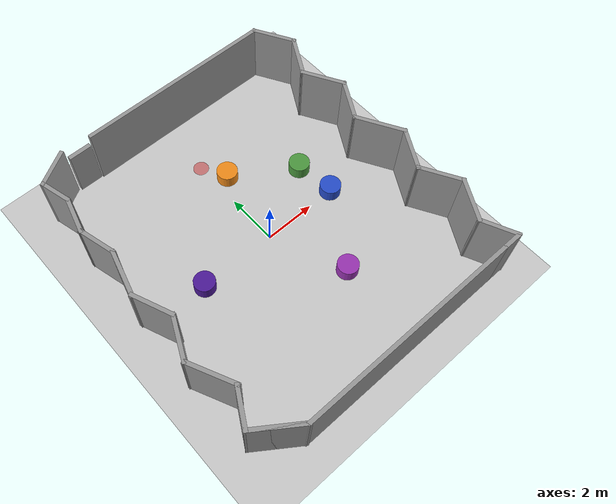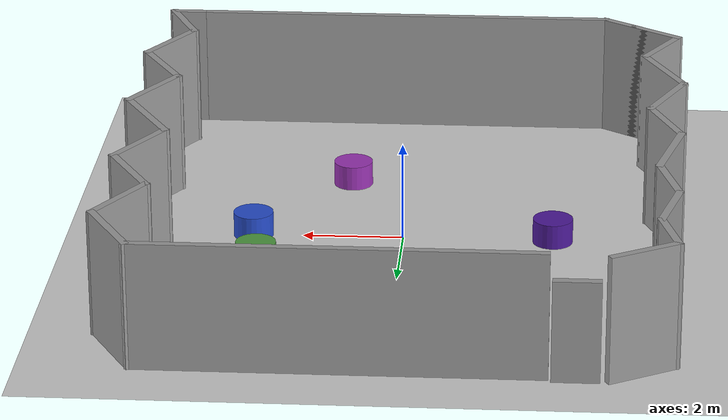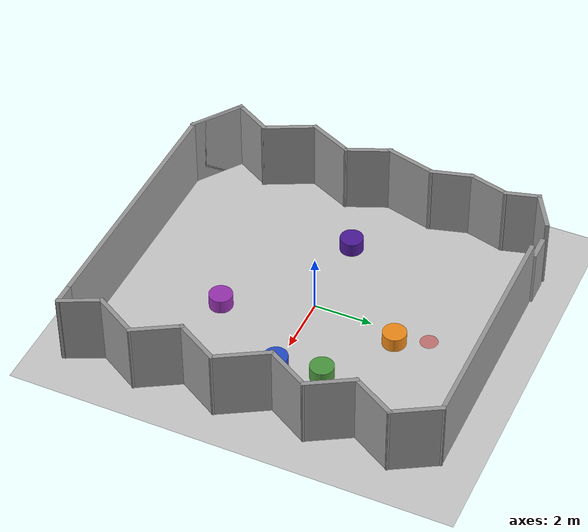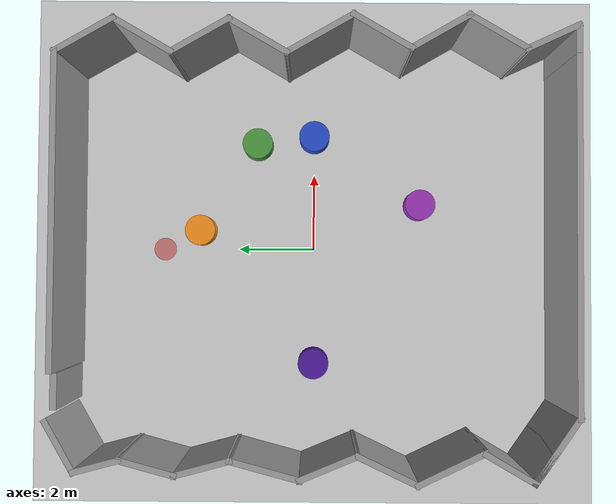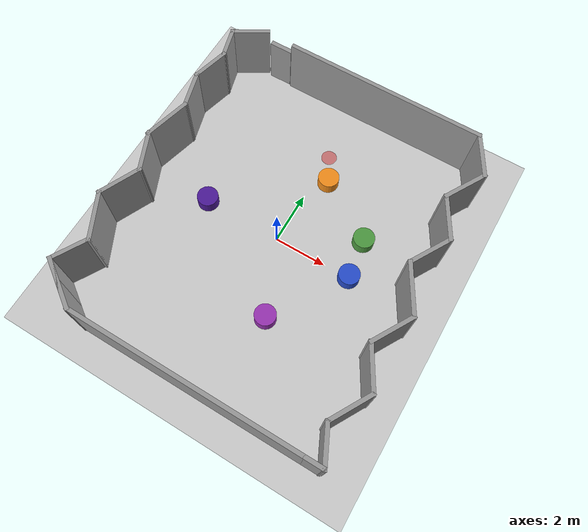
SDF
<sdf version="1.7">
 <world name="default">
  <physics name="default" default="1" type="ode">
   <real_time_update_rate>1000</real_time_update_rate>
   <max_step_size>0.001</max_step_size>
   <real_time_factor>1</real_time_factor>
  </physics>
  <model name="human_1">
   <pose>2.8 1.5 0.25 0 -0 0</pose>
   <link name="link">
    <collision name="collision">
     <geometry><cylinder><radius>0.4</radius><length>0.5</length></cylinder></geometry>
    </collision>
    <visual name="visual">
     <geometry><cylinder><radius>0.4</radius><length>0.5</length></cylinder></geometry>
     <material>
      <script><uri>file://media/materials/scripts/gazebo.material</uri><name>Gazebo/Grass</name></script>
     </material>
    </visual>
    <inertial>
     <inertia><ixx>1</ixx><ixy>0</ixy><ixz>0</ixz><iyy>1</iyy><iyz>0</iyz><izz>1</izz></inertia>
     <mass>1</mass>
    </inertial>
    <kinematic>1</kinematic>
   </link>
   <plugin name="human_1" filename="libobstacle_2.so"/>
   <kinematic>1</kinematic>
  </model>
  <model name="human_2">
   <pose>3 0 0.25 0 -0 0</pose>
   <link name="link">
    <collision name="collision">
     <geometry><cylinder><radius>0.4</radius><length>0.5</length></cylinder></geometry>
    </collision>
    <visual name="visual">
     <geometry><cylinder><radius>0.4</radius><length>0.5</length></cylinder></geometry>
     <material>
      <script><uri>file://media/materials/scripts/gazebo.material</uri><name>Gazebo/Blue</name></script>
     </material>
    </visual>
    <inertial>
     <inertia><ixx>1</ixx><ixy>0</ixy><ixz>0</ixz><iyy>1</iyy><iyz>0</iyz><izz>1</izz></inertia>
     <mass>1</mass>
    </inertial>
    <kinematic>1</kinematic>
   </link>
   <plugin name="human_2" filename="libobstacle_2.so"/>
   <kinematic>1</kinematic>
  </model>
  <model name="human_3">
   <pose>0.5 3 0.25 0 -0 0</pose>
   <link name="link">
    <collision name="collision">
     <geometry><cylinder><radius>0.4</radius><length>0.5</length></cylinder></geometry>
    </collision>
    <visual name="visual">
     <geometry><cylinder><radius>0.4</radius><length>0.5</length></cylinder></geometry>
     <material>
      <script><uri>file://media/materials/scripts/gazebo.material</uri><name>Gazebo/Orange</name></script>
     </material>
    </visual>
    <inertial>
     <inertia><ixx>1</ixx><ixy>0</ixy><ixz>0</ixz><iyy>1</iyy><iyz>0</iyz><izz>1</izz></inertia>
     <mass>1</mass>
    </inertial>
    <kinematic>1</kinematic>
   </link>
   <plugin name="human_3" filename="libobstacle_2.so"/>
   <kinematic>1</kinematic>
  </model>
  <model name="human_4">
   <pose>1.2 -2.8 0.25 0 -0 0</pose>
   <link name="link">
    <collision name="collision">
     <geometry><cylinder><radius>0.4</radius><length>0.5</length></cylinder></geometry>
    </collision>
    <visual name="visual">
     <geometry><cylinder><radius>0.4</radius><length>0.5</length></cylinder></geometry>
     <material>
      <script><uri>file://media/materials/scripts/gazebo.material</uri><name>Gazebo/Purple</name></script>
     </material>
    </visual>
    <inertial>
     <inertia><ixx>1</ixx><ixy>0</ixy><ixz>0</ixz><iyy>1</iyy><iyz>0</iyz><izz>1</izz></inertia>
     <mass>1</mass>
    </inertial>
    <kinematic>1</kinematic>
   </link>
   <plugin name="human_4" filename="libobstacle_2.so"/>
   <kinematic>1</kinematic>
  </model>
  <model name="human_5">
   <pose>-3 0 0.25 0 -0 0</pose>
   <link name="link">
    <collision name="collision">
     <geometry><cylinder><radius>0.4</radius><length>0.5</length></cylinder></geometry>
    </collision>
    <visual name="visual">
     <geometry><cylinder><radius>0.4</radius><length>0.5</length></cylinder></geometry>
     <material>
      <script><uri>file://media/materials/scripts/gazebo.material</uri><name>Gazebo/Indigo</name></script>
     </material>
    </visual>
    <inertial>
     <inertia><ixx>1</ixx><ixy>0</ixy><ixz>0</ixz><iyy>1</iyy><iyz>0</iyz><izz>1</izz></inertia>
     <mass>1</mass>
    </inertial>
    <kinematic>1</kinematic>
   </link>
   <plugin name="human_5" filename="libobstacle_2.so"/>
   <kinematic>1</kinematic>
  </model>
  <model name="ground_plane">
   <static>1</static>
   <link name="link">
    <collision name="collision">
     <geometry><plane><normal>0 0 1</normal><size>100 100</size></plane></geometry>
     <surface>
      <contact><collide_bitmask>65535</collide_bitmask></contact>
      <friction><ode><mu>100</mu><mu2>50</mu2></ode></friction>
     </surface>
    </collision>
    <visual name="visual">
     <cast_shadows>0</cast_shadows>
     <geometry><plane><normal>0 0 1</normal><size>100 100</size></plane></geometry>
     <material>
      <script><uri>file://media/materials/scripts/gazebo.material</uri><name>Gazebo/Grey</name></script>
     </material>
    </visual>
   </link>
  </model>
  <model name="goal">
   <pose>0 4 0.001 0 -0 0</pose>
   <static>1</static>
   <link name="goal">
    <visual name="goal1">
     <geometry><cylinder><radius>0.3</radius><length>0</length></cylinder></geometry>
     <material>
      <script><uri>file://media/materials/scripts/gazebo.material</uri><name>Gazebo/RedTransparent</name></script>
     </material>
    </visual>
   </link>
  </model>
  <light name="sun" type="directional">
   <pose>0 0 10 0 -0 0</pose>
   <diffuse>0.8 0.8 0.8 1</diffuse>
   <specular>0.2 0.2 0.2 1</specular>
   <attenuation>
    <range>1000</range>
    <constant>0.9</constant>
    <linear>0.01</linear>
    <quadratic>0.001</quadratic>
   </attenuation>
   <direction>0 0.5 -0.9</direction>
   <spot><inner_angle>0</inner_angle><outer_angle>0</outer_angle><falloff>0</falloff></spot>
  </light>
  <light name="point_light" type="point">
   <pose>0 -0.377195 6.59868 0 -0 0</pose>
   <diffuse>0.784314 0.784314 0.784314 1</diffuse>
   <specular>0.0980392 0.0980392 0.0980392 1</specular>
   <attenuation>
    <range>50</range>
    <constant>0.8</constant>
    <linear>0</linear>
    <quadratic>0.001</quadratic>
   </attenuation>
   <cast_shadows>0</cast_shadows>
   <direction>0 0 -1</direction>
   <spot><inner_angle>0</inner_angle><outer_angle>0</outer_angle><falloff>0</falloff></spot>
  </light>
  <scene><ambient>0.2 0.2 0.2 1</ambient><background>0.7 0.7 0.7 1</background><shadows>1</shadows></scene>
  <gravity>0 0 -9.8</gravity>
  <magnetic_field>6e-06 2.3e-05 -4.2e-05</magnetic_field>
  <atmosphere type="adiabatic"/>
  <spherical_coordinates>
   <surface_model>EARTH_WGS84</surface_model>
   <latitude_deg>0</latitude_deg>
   <longitude_deg>0</longitude_deg>
   <elevation>0</elevation>
   <heading_deg>0</heading_deg>
  </spherical_coordinates>
  <model name="world_new">
   <link name="Door_0">
    <collision name="Door_0_Collision">
     <geometry><box><size>0.9 0.17 2</size></box></geometry>
     <pose>0 0 1 0 -0 0</pose>
    </collision>
    <visual name="Door_0_Visual">
     <pose>0 0 1 0 -0 0</pose>
     <geometry><box><size>0.9 0.17 2</size></box></geometry>
     <material>
      <script><uri>file://media/materials/scripts/gazebo.material</uri><name>Gazebo/Grey</name></script>
     </material>
    </visual>
    <pose>-3.51602 6.28382 0 0 -0 0</pose>
   </link>
   <link name="Wall_1">
    <collision name="Wall_1_Collision">
     <geometry><box><size>8.75 0.15 2.5</size></box></geometry>
     <pose>0 0 1.25 0 -0 0</pose>
    </collision>
    <visual name="Wall_1_Visual">
     <pose>0 0 1.25 0 -0 0</pose>
     <geometry><box><size>8.75 0.15 2.5</size></box></geometry>
     <material>
      <script><uri>file://media/materials/scripts/gazebo.material</uri><name>Gazebo/Grey</name></script>
      <ambient>1 1 1 1</ambient>
     </material>
     <meta><layer>0</layer></meta>
    </visual>
    <pose>0.30474 -6.30147 0 0 -0 0</pose>
   </link>
   <link name="Wall_10">
    <collision name="Wall_10_Collision">
     <geometry><box><size>1.5 0.15 2.5</size></box></geometry>
     <pose>0 0 1.25 0 -0 0</pose>
    </collision>
    <visual name="Wall_10_Visual">
     <pose>0 0 1.25 0 -0 0</pose>
     <geometry><box><size>1.5 0.15 2.5</size></box></geometry>
     <material>
      <script><uri>file://media/materials/scripts/gazebo.material</uri><name>Gazebo/Grey</name></script>
      <ambient>1 1 1 1</ambient>
     </material>
     <meta><layer>0</layer></meta>
    </visual>
    <pose>-5.20964 2.60989 0 0 -0 1.8326</pose>
   </link>
   <link name="Wall_11">
    <collision name="Wall_11_Collision">
     <geometry><box><size>1.5 0.15 2.5</size></box></geometry>
     <pose>0 0 1.25 0 -0 0</pose>
    </collision>
    <visual name="Wall_11_Visual">
     <pose>0 0 1.25 0 -0 0</pose>
     <geometry><box><size>1.5 0.15 2.5</size></box></geometry>
     <material>
      <script><uri>file://media/materials/scripts/gazebo.material</uri><name>Gazebo/Grey</name></script>
      <ambient>1 1 1 1</ambient>
     </material>
     <meta><layer>0</layer></meta>
    </visual>
    <pose>-5.20964 3.91389 0 0 -0 1.309</pose>
   </link>
   <link name="Wall_12">
    <collision name="Wall_12_Collision">
     <geometry><box><size>1.25 0.15 2.5</size></box></geometry>
     <pose>0 0 1.25 0 -0 0</pose>
    </collision>
    <visual name="Wall_12_Visual">
     <pose>0 0 1.25 0 -0 0</pose>
     <geometry><box><size>1.25 0.15 2.5</size></box></geometry>
     <material>
      <script><uri>file://media/materials/scripts/gazebo.material</uri><name>Gazebo/Grey</name></script>
      <ambient>1 1 1 1</ambient>
     </material>
     <meta><layer>0</layer></meta>
    </visual>
    <pose>-5.17729 5.09715 0 0 -0 1.8326</pose>
   </link>
   <link name="Wall_13">
    <collision name="Wall_13_Collision">
     <geometry><box><size>1.5 0.15 2.5</size></box></geometry>
     <pose>0 0 1.25 0 -0 0</pose>
    </collision>
    <visual name="Wall_13_Visual">
     <pose>0 0 1.25 0 -0 0</pose>
     <geometry><box><size>1.5 0.15 2.5</size></box></geometry>
     <material>
      <script><uri>file://media/materials/scripts/gazebo.material</uri><name>Gazebo/Grey</name></script>
      <ambient>1 1 1 1</ambient>
     </material>
     <meta><layer>0</layer></meta>
    </visual>
    <pose>-4.73507 5.96591 0 0 -0 0.523599</pose>
   </link>
   <link name="Wall_20">
    <collision name="Wall_20_Collision">
     <geometry><box><size>7.75 0.15 2.5</size></box></geometry>
     <pose>0 0 1.25 0 -0 0</pose>
    </collision>
    <visual name="Wall_20_Visual">
     <pose>0 0 1.25 0 -0 0</pose>
     <geometry><box><size>7.75 0.15 2.5</size></box></geometry>
     <material>
      <script><uri>file://media/materials/scripts/gazebo.material</uri><name>Gazebo/Grey</name></script>
      <ambient>1 1 1 1</ambient>
     </material>
     <meta><layer>0</layer></meta>
    </visual>
    <pose>0.851572 6.22264 0 0 -0 3.14159</pose>
   </link>
   <link name="Wall_22">
    <collision name="Wall_22_Collision">
     <geometry><box><size>1.75 0.15 2.5</size></box></geometry>
     <pose>0 0 1.25 0 -0 0</pose>
    </collision>
    <visual name="Wall_22_Visual">
     <pose>0 0 1.25 0 -0 0</pose>
     <geometry><box><size>1.75 0.15 2.5</size></box></geometry>
     <material>
      <script><uri>file://media/materials/scripts/gazebo.material</uri><name>Gazebo/Grey</name></script>
      <ambient>1 1 1 1</ambient>
     </material>
     <meta><layer>0</layer></meta>
    </visual>
    <pose>5.05157 5.52982 0 0 -0 -1.0472</pose>
   </link>
   <link name="Wall_23">
    <collision name="Wall_23_Collision">
     <geometry><box><size>1.75 0.15 2.5</size></box></geometry>
     <pose>0 0 1.25 0 -0 0</pose>
    </collision>
    <visual name="Wall_23_Visual">
     <pose>0 0 1.25 0 -0 0</pose>
     <geometry><box><size>1.75 0.15 2.5</size></box></geometry>
     <material>
      <script><uri>file://media/materials/scripts/gazebo.material</uri><name>Gazebo/Grey</name></script>
      <ambient>1 1 1 1</ambient>
     </material>
     <meta><layer>0</layer></meta>
    </visual>
    <pose>5.05157 4.14418 0 0 -0 -2.0944</pose>
   </link>
   <link name="Wall_24">
    <collision name="Wall_24_Collision">
     <geometry><box><size>1.75 0.15 2.5</size></box></geometry>
     <pose>0 0 1.25 0 -0 0</pose>
    </collision>
    <visual name="Wall_24_Visual">
     <pose>0 0 1.25 0 -0 0</pose>
     <geometry><box><size>1.75 0.15 2.5</size></box></geometry>
     <material>
      <script><uri>file://media/materials/scripts/gazebo.material</uri><name>Gazebo/Grey</name></script>
      <ambient>1 1 1 1</ambient>
     </material>
     <meta><layer>0</layer></meta>
    </visual>
    <pose>5.05157 2.75854 0 0 -0 -1.0472</pose>
   </link>
   <link name="Wall_25">
    <collision name="Wall_25_Collision">
     <geometry><box><size>1.75 0.15 2.5</size></box></geometry>
     <pose>0 0 1.25 0 -0 0</pose>
    </collision>
    <visual name="Wall_25_Visual">
     <pose>0 0 1.25 0 -0 0</pose>
     <geometry><box><size>1.75 0.15 2.5</size></box></geometry>
     <material>
      <script><uri>file://media/materials/scripts/gazebo.material</uri><name>Gazebo/Grey</name></script>
      <ambient>1 1 1 1</ambient>
     </material>
     <meta><layer>0</layer></meta>
    </visual>
    <pose>5.05157 1.37289 0 0 -0 -2.0944</pose>
   </link>
   <link name="Wall_26">
    <collision name="Wall_26_Collision">
     <geometry><box><size>2 0.15 2.5</size></box></geometry>
     <pose>0 0 1.25 0 -0 0</pose>
    </collision>
    <visual name="Wall_26_Visual">
     <pose>0 0 1.25 0 -0 0</pose>
     <geometry><box><size>2 0.15 2.5</size></box></geometry>
     <material>
      <script><uri>file://media/materials/scripts/gazebo.material</uri><name>Gazebo/Grey</name></script>
      <ambient>1 1 1 1</ambient>
     </material>
     <meta><layer>0</layer></meta>
    </visual>
    <pose>5.11407 -0.120999 0 0 -0 -1.0472</pose>
   </link>
   <link name="Wall_27">
    <collision name="Wall_27_Collision">
     <geometry><box><size>1.75 0.15 2.5</size></box></geometry>
     <pose>0 0 1.25 0 -0 0</pose>
    </collision>
    <visual name="Wall_27_Visual">
     <pose>0 0 1.25 0 -0 0</pose>
     <geometry><box><size>1.75 0.15 2.5</size></box></geometry>
     <material>
      <script><uri>file://media/materials/scripts/gazebo.material</uri><name>Gazebo/Grey</name></script>
      <ambient>1 1 1 1</ambient>
     </material>
     <meta><layer>0</layer></meta>
    </visual>
    <pose>5.17657 -1.61489 0 0 -0 -2.0944</pose>
   </link>
   <link name="Wall_28">
    <collision name="Wall_28_Collision">
     <geometry><box><size>1.75 0.15 2.5</size></box></geometry>
     <pose>0 0 1.25 0 -0 0</pose>
    </collision>
    <visual name="Wall_28_Visual">
     <pose>0 0 1.25 0 -0 0</pose>
     <geometry><box><size>1.75 0.15 2.5</size></box></geometry>
     <material>
      <script><uri>file://media/materials/scripts/gazebo.material</uri><name>Gazebo/Grey</name></script>
      <ambient>1 1 1 1</ambient>
     </material>
     <meta><layer>0</layer></meta>
    </visual>
    <pose>5.17657 -3.00053 0 0 -0 -1.0472</pose>
   </link>
   <link name="Wall_29">
    <collision name="Wall_29_Collision">
     <geometry><box><size>1.75 0.15 2.5</size></box></geometry>
     <pose>0 0 1.25 0 -0 0</pose>
    </collision>
    <visual name="Wall_29_Visual">
     <pose>0 0 1.25 0 -0 0</pose>
     <geometry><box><size>1.75 0.15 2.5</size></box></geometry>
     <material>
      <script><uri>file://media/materials/scripts/gazebo.material</uri><name>Gazebo/Grey</name></script>
      <ambient>1 1 1 1</ambient>
     </material>
     <meta><layer>0</layer></meta>
    </visual>
    <pose>5.17657 -4.38617 0 0 -0 -2.0944</pose>
   </link>
   <link name="Wall_3">
    <collision name="Wall_3_Collision">
     <geometry><box><size>2.00445 0.15 2.5</size></box></geometry>
     <pose>0 0 1.25 0 -0 0</pose>
    </collision>
    <visual name="Wall_3_Visual">
     <pose>0 0 1.25 0 -0 0</pose>
     <geometry><box><size>2.00445 0.15 2.5</size></box></geometry>
     <material>
      <script><uri>file://media/materials/scripts/gazebo.material</uri><name>Gazebo/Grey</name></script>
      <ambient>1 1 1 1</ambient>
     </material>
     <meta><layer>0</layer></meta>
    </visual>
    <pose>-4.7567 -5.77237 0 0 -0 -0.607269</pose>
   </link>
   <link name="Wall_30">
    <collision name="Wall_30_Collision">
     <geometry><box><size>1.49807 0.15 2.5</size></box></geometry>
     <pose>0 0 1.25 0 -0 0</pose>
    </collision>
    <visual name="Wall_30_Visual">
     <pose>0 0 1.25 0 -0 0</pose>
     <geometry><box><size>1.49807 0.15 2.5</size></box></geometry>
     <material>
      <script><uri>file://media/materials/scripts/gazebo.material</uri><name>Gazebo/Grey</name></script>
      <ambient>1 1 1 1</ambient>
     </material>
     <meta><layer>0</layer></meta>
    </visual>
    <pose>5.0616 -5.6898 0 0 -0 -1.13418</pose>
   </link>
   <link name="Wall_31">
    <collision name="Wall_31_Collision">
     <geometry><box><size>0.75 0.15 2.5</size></box></geometry>
     <pose>0 0 1.25 0 -0 0</pose>
    </collision>
    <visual name="Wall_31_Visual">
     <pose>0 0 1.25 0 -0 0</pose>
     <geometry><box><size>0.75 0.15 2.5</size></box></geometry>
     <material>
      <script><uri>file://media/materials/scripts/gazebo.material</uri><name>Gazebo/Grey</name></script>
      <ambient>1 1 1 1</ambient>
     </material>
     <meta><layer>0</layer></meta>
    </visual>
    <pose>5.02914 -6.3006 0 0 -0 3.14159</pose>
   </link>
   <link name="Wall_4">
    <collision name="Wall_4_Collision">
     <geometry><box><size>2.00445 0.15 2.5</size></box></geometry>
     <pose>0 0 1.25 0 -0 0</pose>
    </collision>
    <visual name="Wall_4_Visual">
     <pose>0 0 1.25 0 -0 0</pose>
     <geometry><box><size>2.00445 0.15 2.5</size></box></geometry>
     <material>
      <script><uri>file://media/materials/scripts/gazebo.material</uri><name>Gazebo/Grey</name></script>
      <ambient>1 1 1 1</ambient>
     </material>
     <meta><layer>0</layer></meta>
    </visual>
    <pose>-4.7567 -5.77237 0 0 -0 2.53432</pose>
   </link>
   <link name="Wall_5">
    <collision name="Wall_5_Collision">
     <geometry><box><size>1.5 0.15 2.5</size></box></geometry>
     <pose>0 0 1.25 0 -0 0</pose>
    </collision>
    <visual name="Wall_5_Visual">
     <pose>0 0 1.25 0 -0 0</pose>
     <geometry><box><size>1.5 0.15 2.5</size></box></geometry>
     <material>
      <script><uri>file://media/materials/scripts/gazebo.material</uri><name>Gazebo/Grey</name></script>
      <ambient>1 1 1 1</ambient>
     </material>
     <meta><layer>0</layer></meta>
    </visual>
    <pose>-5.18065 -4.65871 0 0 -0 1.0472</pose>
   </link>
   <link name="Wall_6">
    <collision name="Wall_6_Collision">
     <geometry><box><size>1.9146 0.15 2.5</size></box></geometry>
     <pose>0 0 1.25 0 -0 0</pose>
    </collision>
    <visual name="Wall_6_Visual">
     <pose>0 0 1.25 0 -0 0</pose>
     <geometry><box><size>1.9146 0.15 2.5</size></box></geometry>
     <material>
      <script><uri>file://media/materials/scripts/gazebo.material</uri><name>Gazebo/Grey</name></script>
      <ambient>1 1 1 1</ambient>
     </material>
     <meta><layer>0</layer></meta>
    </visual>
    <pose>-5.19573 -3.27939 0 0 -0 2.02004</pose>
   </link>
   <link name="Wall_7">
    <collision name="Wall_7_Collision">
     <geometry><box><size>1.73033 0.15 2.5</size></box></geometry>
     <pose>0 0 1.25 0 -0 0</pose>
    </collision>
    <visual name="Wall_7_Visual">
     <pose>0 0 1.25 0 -0 0</pose>
     <geometry><box><size>1.73033 0.15 2.5</size></box></geometry>
     <material>
      <script><uri>file://media/materials/scripts/gazebo.material</uri><name>Gazebo/Grey</name></script>
      <ambient>1 1 1 1</ambient>
     </material>
     <meta><layer>0</layer></meta>
    </visual>
    <pose>-5.24161 -1.77007 0 0 -0 1.12979</pose>
   </link>
   <link name="Wall_8">
    <collision name="Wall_8_Collision">
     <geometry><box><size>1.64156 0.15 2.5</size></box></geometry>
     <pose>0 0 1.25 0 -0 0</pose>
    </collision>
    <visual name="Wall_8_Visual">
     <pose>0 0 1.25 0 -0 0</pose>
     <geometry><box><size>1.64156 0.15 2.5</size></box></geometry>
     <material>
      <script><uri>file://media/materials/scripts/gazebo.material</uri><name>Gazebo/Grey</name></script>
      <ambient>1 1 1 1</ambient>
     </material>
     <meta><layer>0</layer></meta>
    </visual>
    <pose>-5.19198 -0.367435 0 0 -0 1.96678</pose>
   </link>
   <link name="Wall_9">
    <collision name="Wall_9_Collision">
     <geometry><box><size>1.87611 0.15 2.5</size></box></geometry>
     <pose>0 0 1.25 0 -0 0</pose>
    </collision>
    <visual name="Wall_9_Visual">
     <pose>0 0 1.25 0 -0 0</pose>
     <geometry><box><size>1.87611 0.15 2.5</size></box></geometry>
     <material>
      <script><uri>file://media/materials/scripts/gazebo.material</uri><name>Gazebo/Grey</name></script>
      <ambient>1 1 1 1</ambient>
     </material>
     <meta><layer>0</layer></meta>
    </visual>
    <pose>-5.25729 1.12397 0 0 -0 1.31023</pose>
   </link>
   <static>1</static>
  </model>
 </world>
</sdf>
